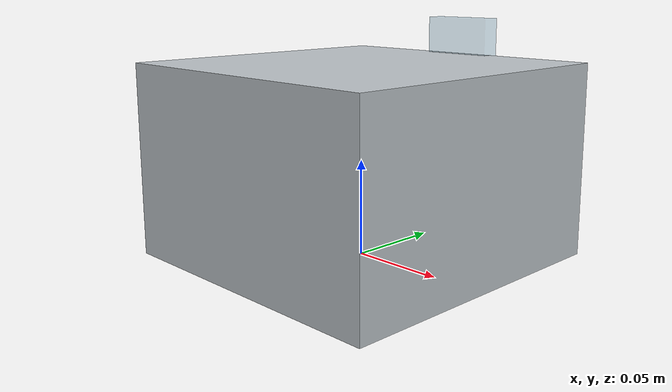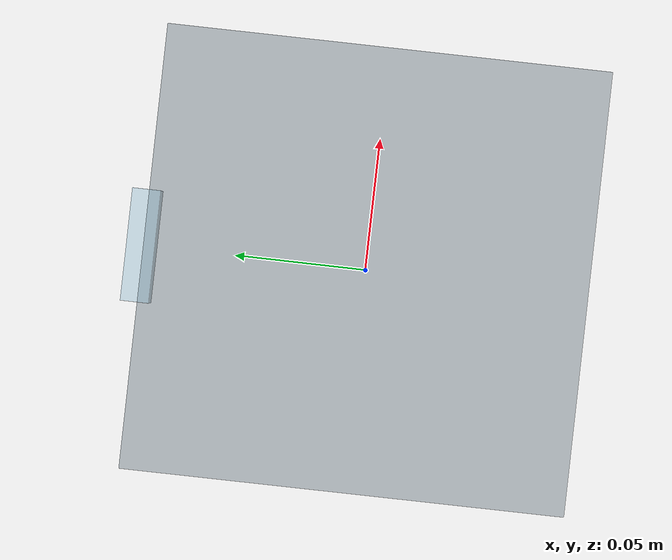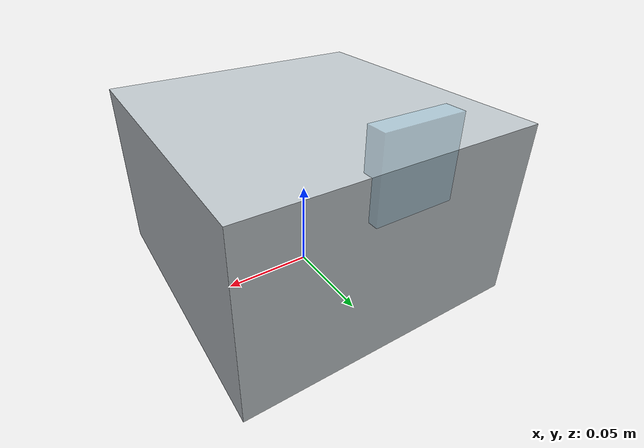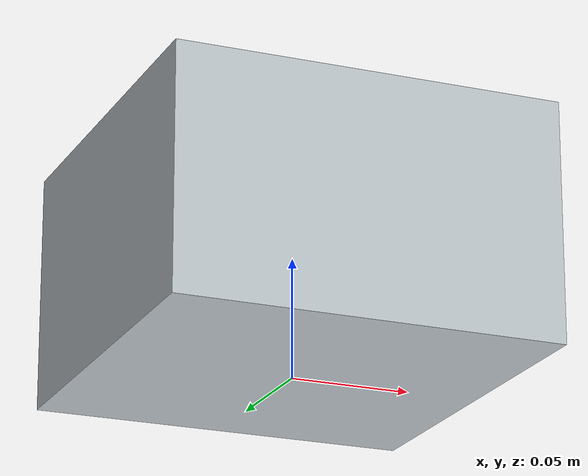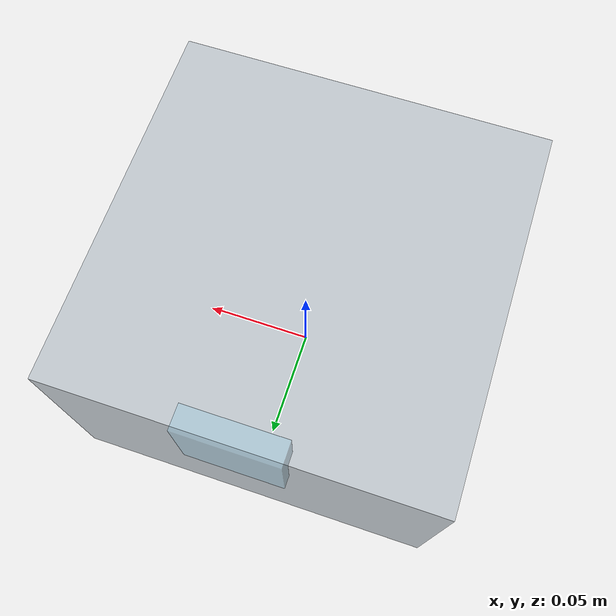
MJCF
<?xml version="1.0" encoding="utf-8"?>
<mujoco model="balance_draft_shield">
  <compiler angle="radian" autolimits="true"/>
  <default>
    <default class="body"><geom contype="1" conaffinity="1"/></default>
  </default>
  <worldbody>
    <body name="base">
      <geom type="box" size="0.08 0.08 0.05" pos="0 0 0.05" rgba="0.75 0.78 0.8 1" class="body"/>
      <body name="lid" pos="0 0.08 0.1">
        <joint name="lid_joint" type="hinge" axis="1 0 0" range="0 1.6" damping="0.3" frictionloss="0.3"/>
  <geom type="box" size="0.02 0.005 0.02" pos="0 0 0" rgba="0.6 0.8 0.9 0.4" class="body"/>
      </body>
    </body>
  </worldbody>
</mujoco>
